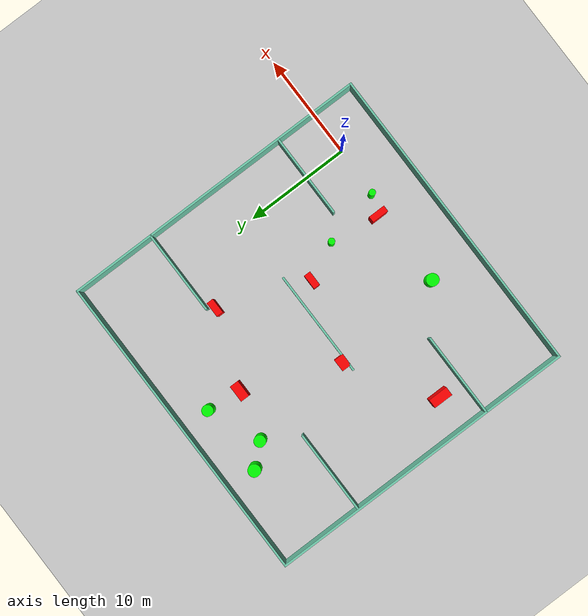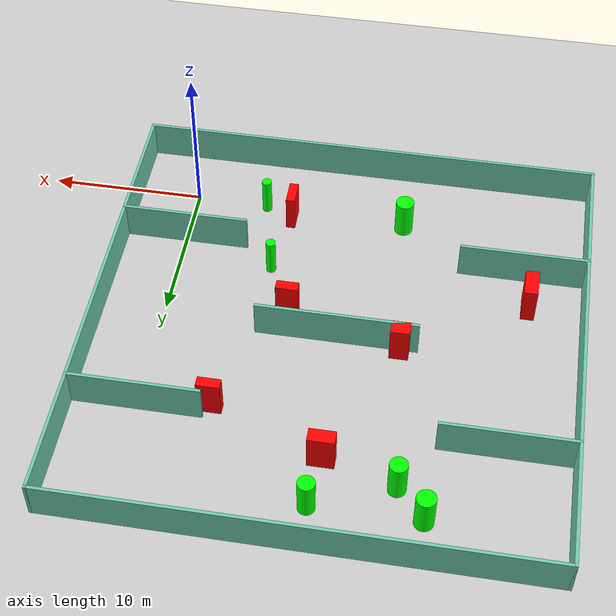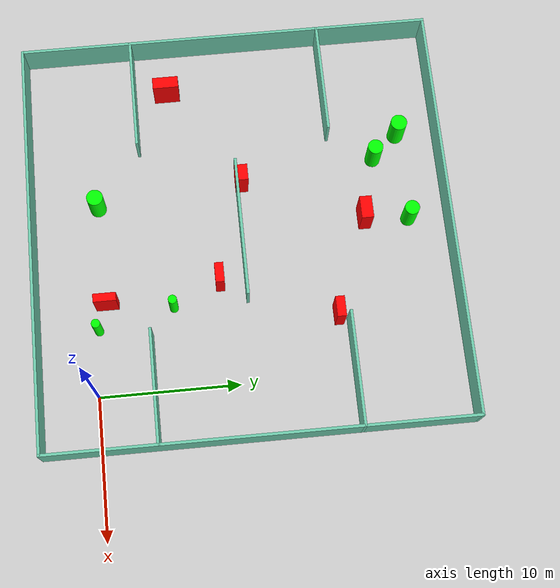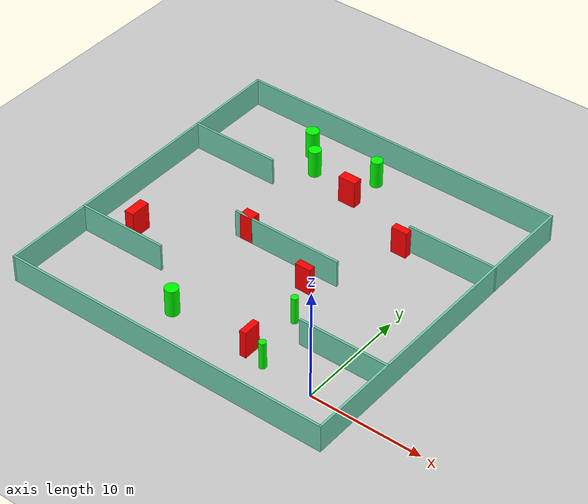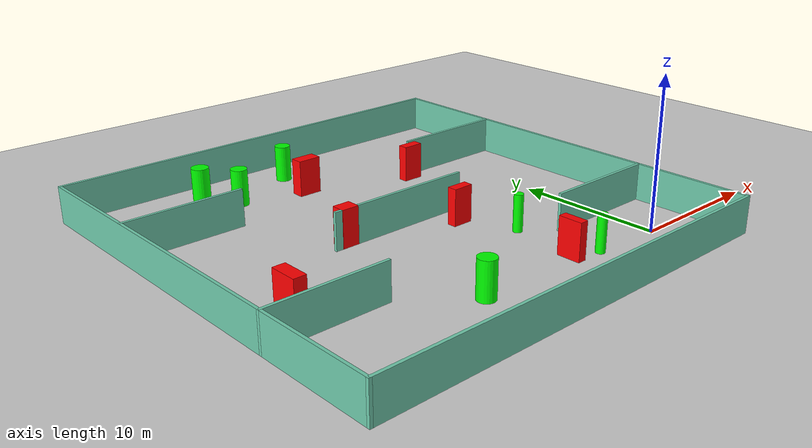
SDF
<sdf version="1.7">
 <world name="default">
  <light name="sun" type="directional">
   <pose>0 0 10 0 -0 0</pose>
   <diffuse>0.8 0.8 0.8 1</diffuse>
   <specular>0.2 0.2 0.2 1</specular>
   <attenuation>
    <range>1000</range>
    <constant>0.9</constant>
    <linear>0.01</linear>
    <quadratic>0.001</quadratic>
   </attenuation>
   <direction>-0.5 0.1 -0.9</direction>
   <spot><inner_angle>0</inner_angle><outer_angle>0</outer_angle><falloff>0</falloff></spot>
  </light>
  <model name="ground_plane">
   <static>1</static>
   <link name="link">
    <collision name="collision">
     <geometry><plane><normal>0 0 1</normal><size>100 100</size></plane></geometry>
     <surface>
      <contact><collide_bitmask>65535</collide_bitmask></contact>
      <friction><ode><mu>100</mu><mu2>50</mu2></ode></friction>
     </surface>
    </collision>
    <visual name="visual">
     <cast_shadows>0</cast_shadows>
     <geometry><plane><normal>0 0 1</normal><size>100 100</size></plane></geometry>
     <material>
      <script><uri>file://media/materials/scripts/gazebo.material</uri><name>Gazebo/Grey</name></script>
     </material>
    </visual>
   </link>
  </model>
  <gravity>0 0 -9.8</gravity>
  <magnetic_field>6e-06 2.3e-05 -4.2e-05</magnetic_field>
  <atmosphere type="adiabatic"/>
  <physics type="ode">
   <max_step_size>0.001</max_step_size>
   <real_time_factor>1</real_time_factor>
   <real_time_update_rate>1000</real_time_update_rate>
  </physics>
  <scene><ambient>0.4 0.4 0.4 1</ambient><background>0.7 0.7 0.7 1</background><shadows>1</shadows></scene>
  <spherical_coordinates>
   <surface_model>EARTH_WGS84</surface_model>
   <latitude_deg>0</latitude_deg>
   <longitude_deg>0</longitude_deg>
   <elevation>0</elevation>
   <heading_deg>0</heading_deg>
  </spherical_coordinates>
  <model name="my_base_walls">
   <link name="Wall_10">
    <collision name="Wall_10_Collision">
     <geometry><box><size>8.2 0.2 2.5</size></box></geometry>
     <pose>0 0 1.25 0 -0 0</pose>
    </collision>
    <visual name="Wall_10_Visual">
     <pose>0 0 1.25 0 -0 0</pose>
     <geometry><box><size>8.2 0.2 2.5</size></box></geometry>
     <material>
      <script><uri>file://media/materials/scripts/gazebo.material</uri><name>Gazebo/Grey</name></script>
      <ambient>0.435294 0.796078 0.67451 1</ambient>
     </material>
     <meta><layer>0</layer></meta>
    </visual>
    <pose>-11 -7 0 0 -0 0</pose>
   </link>
   <link name="Wall_12">
    <collision name="Wall_12_Collision">
     <geometry><box><size>8.2 0.2 2.5</size></box></geometry>
     <pose>0 0 1.25 0 -0 0</pose>
    </collision>
    <visual name="Wall_12_Visual">
     <pose>0 0 1.25 0 -0 0</pose>
     <geometry><box><size>8.2 0.2 2.5</size></box></geometry>
     <material>
      <script><uri>file://media/materials/scripts/gazebo.material</uri><name>Gazebo/Grey</name></script>
      <ambient>0.435294 0.796078 0.67451 1</ambient>
     </material>
     <meta><layer>0</layer></meta>
    </visual>
    <pose>-11 7 0 0 -0 0</pose>
   </link>
   <link name="Wall_14">
    <collision name="Wall_14_Collision">
     <geometry><box><size>8.2 0.2 2.5</size></box></geometry>
     <pose>0 0 1.25 0 -0 0</pose>
    </collision>
    <visual name="Wall_14_Visual">
     <pose>0 0 1.25 0 -0 0</pose>
     <geometry><box><size>8.2 0.2 2.5</size></box></geometry>
     <material>
      <script><uri>file://media/materials/scripts/gazebo.material</uri><name>Gazebo/Grey</name></script>
      <ambient>0.435294 0.796078 0.67451 1</ambient>
     </material>
     <meta><layer>0</layer></meta>
    </visual>
    <pose>11 7 0 0 -0 3.14159</pose>
   </link>
   <link name="Wall_16">
    <collision name="Wall_16_Collision">
     <geometry><box><size>10.2 0.2 2.5</size></box></geometry>
     <pose>0 0 1.25 0 -0 0</pose>
    </collision>
    <visual name="Wall_16_Visual">
     <pose>0 0 1.25 0 -0 0</pose>
     <geometry><box><size>10.2 0.2 2.5</size></box></geometry>
     <material>
      <script><uri>file://media/materials/scripts/gazebo.material</uri><name>Gazebo/Grey</name></script>
      <ambient>0.435294 0.796078 0.67451 1</ambient>
     </material>
     <meta><layer>0</layer></meta>
    </visual>
    <pose>0 0 0 0 -0 3.14159</pose>
   </link>
   <link name="Wall_2">
    <collision name="Wall_2_Collision">
     <geometry><box><size>30.2 0.2 2.5</size></box></geometry>
     <pose>0 0 1.25 0 -0 0</pose>
    </collision>
    <visual name="Wall_2_Visual">
     <pose>0 0 1.25 0 -0 0</pose>
     <geometry><box><size>30.2 0.2 2.5</size></box></geometry>
     <material>
      <script><uri>file://media/materials/scripts/gazebo.material</uri><name>Gazebo/Grey</name></script>
      <ambient>0.435294 0.796078 0.67451 1</ambient>
     </material>
     <meta><layer>0</layer></meta>
    </visual>
    <pose>0 -15 0 0 -0 3.14159</pose>
   </link>
   <link name="Wall_3">
    <collision name="Wall_3_Collision">
     <geometry><box><size>30.2 0.2 2.5</size></box></geometry>
     <pose>0 0 1.25 0 -0 0</pose>
    </collision>
    <visual name="Wall_3_Visual">
     <pose>0 0 1.25 0 -0 0</pose>
     <geometry><box><size>30.2 0.2 2.5</size></box></geometry>
     <material>
      <script><uri>file://media/materials/scripts/gazebo.material</uri><name>Gazebo/Grey</name></script>
      <ambient>0.435294 0.796078 0.67451 1</ambient>
     </material>
     <meta><layer>0</layer></meta>
    </visual>
    <pose>-15 0 0 0 -0 1.5708</pose>
   </link>
   <link name="Wall_4">
    <collision name="Wall_4_Collision">
     <geometry><box><size>30.2 0.2 2.5</size></box></geometry>
     <pose>0 0 1.25 0 -0 0</pose>
    </collision>
    <visual name="Wall_4_Visual">
     <pose>0 0 1.25 0 -0 0</pose>
     <geometry><box><size>30.2 0.2 2.5</size></box></geometry>
     <material>
      <script><uri>file://media/materials/scripts/gazebo.material</uri><name>Gazebo/Grey</name></script>
      <ambient>0.435294 0.796078 0.67451 1</ambient>
     </material>
     <meta><layer>0</layer></meta>
    </visual>
    <pose>0 15 0 0 -0 0</pose>
   </link>
   <link name="Wall_6">
    <collision name="Wall_6_Collision">
     <geometry><box><size>30.2 0.2 2.5</size></box></geometry>
     <pose>0 0 1.25 0 -0 0</pose>
    </collision>
    <visual name="Wall_6_Visual">
     <pose>0 0 1.25 0 -0 0</pose>
     <geometry><box><size>30.2 0.2 2.5</size></box></geometry>
     <material>
      <script><uri>file://media/materials/scripts/gazebo.material</uri><name>Gazebo/Grey</name></script>
      <ambient>0.435294 0.796078 0.67451 1</ambient>
     </material>
     <meta><layer>0</layer></meta>
    </visual>
    <pose>15 0 0 0 -0 1.5708</pose>
   </link>
   <link name="Wall_8">
    <collision name="Wall_8_Collision">
     <geometry><box><size>8.2 0.2 2.5</size></box></geometry>
     <pose>0 0 1.25 0 -0 0</pose>
    </collision>
    <visual name="Wall_8_Visual">
     <pose>0 0 1.25 0 -0 0</pose>
     <geometry><box><size>8.2 0.2 2.5</size></box></geometry>
     <material>
      <script><uri>file://media/materials/scripts/gazebo.material</uri><name>Gazebo/Grey</name></script>
      <ambient>0.435294 0.796078 0.67451 1</ambient>
     </material>
     <meta><layer>0</layer></meta>
    </visual>
    <pose>11 -7 0 0 -0 3.14159</pose>
   </link>
   <static>1</static>
   <pose>-11 11 0 0 -0 0</pose>
  </model>
  <model name="cylinder1">
   <static>1</static>
   <link name="link">
    <inertial>
     <mass>1</mass>
     <inertia><ixx>0.5</ixx><ixy>0</ixy><ixz>0</ixz><iyy>0.5</iyy><iyz>0</iyz><izz>1</izz></inertia>
    </inertial>
    <collision name="collision">
     <geometry><cylinder><radius>0.5537782183750937</radius><length>2.5</length></cylinder></geometry>
    </collision>
    <visual name="visual">
     <geometry><cylinder><radius>0.5537782183750937</radius><length>2.5</length></cylinder></geometry>
     <material>
      <ambient>0 1 0 1</ambient>
      <diffuse>0 1 0 1</diffuse>
      <specular>0.1 0.1 0.1 1</specular>
      <emissive>0 0 0 0</emissive>
     </material>
    </visual>
   </link>
   <pose>-16.053002397952252 21.233594235862146 1.25 0 0 0</pose>
  </model>
  <model name="cylinder2">
   <static>1</static>
   <link name="link">
    <inertial>
     <mass>1</mass>
     <inertia><ixx>0.5</ixx><ixy>0</ixy><ixz>0</ixz><iyy>0.5</iyy><iyz>0</iyz><izz>1</izz></inertia>
    </inertial>
    <collision name="collision">
     <geometry><cylinder><radius>0.590205214627458</radius><length>2.5</length></cylinder></geometry>
    </collision>
    <visual name="visual">
     <geometry><cylinder><radius>0.590205214627458</radius><length>2.5</length></cylinder></geometry>
     <material>
      <ambient>0 1 0 1</ambient>
      <diffuse>0 1 0 1</diffuse>
      <specular>0.1 0.1 0.1 1</specular>
      <emissive>0 0 0 0</emissive>
     </material>
    </visual>
   </link>
   <pose>-13.99451598826225 0.7223873076785399 1.25 0 0 0</pose>
  </model>
  <model name="cylinder3">
   <static>1</static>
   <link name="link">
    <inertial>
     <mass>1</mass>
     <inertia><ixx>0.5</ixx><ixy>0</ixy><ixz>0</ixz><iyy>0.5</iyy><iyz>0</iyz><izz>1</izz></inertia>
    </inertial>
    <collision name="collision">
     <geometry><cylinder><radius>0.5286949915150214</radius><length>2.5</length></cylinder></geometry>
    </collision>
    <visual name="visual">
     <geometry><cylinder><radius>0.5286949915150214</radius><length>2.5</length></cylinder></geometry>
     <material>
      <ambient>0 1 0 1</ambient>
      <diffuse>0 1 0 1</diffuse>
      <specular>0.1 0.1 0.1 1</specular>
      <emissive>0 0 0 0</emissive>
     </material>
    </visual>
   </link>
   <pose>-11.1758381243263 23.251627981351763 1.25 0 0 0</pose>
  </model>
  <model name="cylinder4">
   <static>1</static>
   <link name="link">
    <inertial>
     <mass>1</mass>
     <inertia><ixx>0.5</ixx><ixy>0</ixy><ixz>0</ixz><iyy>0.5</iyy><iyz>0</iyz><izz>1</izz></inertia>
    </inertial>
    <collision name="collision">
     <geometry><cylinder><radius>0.5916377829027153</radius><length>2.5</length></cylinder></geometry>
    </collision>
    <visual name="visual">
     <geometry><cylinder><radius>0.5916377829027153</radius><length>2.5</length></cylinder></geometry>
     <material>
      <ambient>0 1 0 1</ambient>
      <diffuse>0 1 0 1</diffuse>
      <specular>0.1 0.1 0.1 1</specular>
      <emissive>0 0 0 0</emissive>
     </material>
    </visual>
   </link>
   <pose>-17.7991284885468 23.16713936007874 1.25 0 0 0</pose>
  </model>
  <model name="cylinder5">
   <static>1</static>
   <link name="link">
    <inertial>
     <mass>1</mass>
     <inertia><ixx>0.5</ixx><ixy>0</ixy><ixz>0</ixz><iyy>0.5</iyy><iyz>0</iyz><izz>1</izz></inertia>
    </inertial>
    <collision name="collision">
     <geometry><cylinder><radius>0.3140329918122599</radius><length>2.5</length></cylinder></geometry>
    </collision>
    <visual name="visual">
     <geometry><cylinder><radius>0.3140329918122599</radius><length>2.5</length></cylinder></geometry>
     <material>
      <ambient>0 1 0 1</ambient>
      <diffuse>0 1 0 1</diffuse>
      <specular>0.1 0.1 0.1 1</specular>
      <emissive>0 0 0 0</emissive>
     </material>
    </visual>
   </link>
   <pose>-5.968654358546964 5.701399901888774 1.25 0 0 0</pose>
  </model>
  <model name="cylinder6">
   <static>1</static>
   <link name="link">
    <inertial>
     <mass>1</mass>
     <inertia><ixx>0.5</ixx><ixy>0</ixy><ixz>0</ixz><iyy>0.5</iyy><iyz>0</iyz><izz>1</izz></inertia>
    </inertial>
    <collision name="collision">
     <geometry><cylinder><radius>0.31481515556834855</radius><length>2.5</length></cylinder></geometry>
    </collision>
    <visual name="visual">
     <geometry><cylinder><radius>0.31481515556834855</radius><length>2.5</length></cylinder></geometry>
     <material>
      <ambient>0 1 0 1</ambient>
      <diffuse>0 1 0 1</diffuse>
      <specular>0.1 0.1 0.1 1</specular>
      <emissive>0 0 0 0</emissive>
     </material>
    </visual>
   </link>
   <pose>-4.725069921936392 0.286192155623163 1.25 0 0 0</pose>
  </model>
  <model name="box1">
   <static>1</static>
   <link name="link">
    <inertial>
     <mass>1</mass>
     <inertia><ixx>0.083</ixx><ixy>0</ixy><ixz>0</ixz><iyy>0.083</iyy><iyz>0</iyz><izz>0.083</izz></inertia>
    </inertial>
    <collision name="collision">
     <geometry><box><size>1.4228102932337925 0.6393260907432163 2.5</size></box></geometry>
    </collision>
    <visual name="visual">
     <geometry><box><size>1.4228102932337925 0.6393260907432163 2.5</size></box></geometry>
     <material>
      <ambient>1 0 0 1</ambient>
      <diffuse>1 0 0 1</diffuse>
      <specular>0.1 0.1 0.1 1</specular>
      <emissive>0 0 0 0</emissive>
     </material>
    </visual>
    <sensor name="my_contact" type="contact">
     <contact><collision>box_collision</collision><topic>__default_topic__</topic></contact>
    </sensor>
   </link>
   <pose>-7.642189609015549 9.124646878164668 1.25 0 0 0</pose>
  </model>
  <model name="box2">
   <static>1</static>
   <link name="link">
    <inertial>
     <mass>1</mass>
     <inertia><ixx>0.083</ixx><ixy>0</ixy><ixz>0</ixz><iyy>0.083</iyy><iyz>0</iyz><izz>0.083</izz></inertia>
    </inertial>
    <collision name="collision">
     <geometry><box><size>1.4494259847927253 0.6527287275485648 2.5</size></box></geometry>
    </collision>
    <visual name="visual">
     <geometry><box><size>1.4494259847927253 0.6527287275485648 2.5</size></box></geometry>
     <material>
      <ambient>1 0 0 1</ambient>
      <diffuse>1 0 0 1</diffuse>
      <specular>0.1 0.1 0.1 1</specular>
      <emissive>0 0 0 0</emissive>
     </material>
    </visual>
    <sensor name="my_contact" type="contact">
     <contact><collision>box_collision</collision><topic>__default_topic__</topic></contact>
    </sensor>
   </link>
   <pose>-4.414587577374618 17.329087222188917 1.25 0 0 0</pose>
  </model>
  <model name="box3">
   <static>1</static>
   <link name="link">
    <inertial>
     <mass>1</mass>
     <inertia><ixx>0.083</ixx><ixy>0</ixy><ixz>0</ixz><iyy>0.083</iyy><iyz>0</iyz><izz>0.083</izz></inertia>
    </inertial>
    <collision name="collision">
     <geometry><box><size>1.6220460662850698 0.8638777489156384 2.5</size></box></geometry>
    </collision>
    <visual name="visual">
     <geometry><box><size>1.6220460662850698 0.8638777489156384 2.5</size></box></geometry>
     <material>
      <ambient>1 0 0 1</ambient>
      <diffuse>1 0 0 1</diffuse>
      <specular>0.1 0.1 0.1 1</specular>
      <emissive>0 0 0 0</emissive>
     </material>
    </visual>
    <sensor name="my_contact" type="contact">
     <contact><collision>box_collision</collision><topic>__default_topic__</topic></contact>
    </sensor>
   </link>
   <pose>-11.522534312766298 20.010619502079344 1.25 0 0 0</pose>
  </model>
  <model name="box4">
   <static>1</static>
   <link name="link">
    <inertial>
     <mass>1</mass>
     <inertia><ixx>0.083</ixx><ixy>0</ixy><ixz>0</ixz><iyy>0.083</iyy><iyz>0</iyz><izz>0.083</izz></inertia>
    </inertial>
    <collision name="collision">
     <geometry><box><size>0.852775751529706 1.8733180933755893 2.5</size></box></geometry>
    </collision>
    <visual name="visual">
     <geometry><box><size>0.852775751529706 1.8733180933755893 2.5</size></box></geometry>
     <material>
      <ambient>1 0 0 1</ambient>
      <diffuse>1 0 0 1</diffuse>
      <specular>0.1 0.1 0.1 1</specular>
      <emissive>0 0 0 0</emissive>
     </material>
    </visual>
    <sensor name="my_contact" type="contact">
     <contact><collision>box_collision</collision><topic>__default_topic__</topic></contact>
    </sensor>
   </link>
   <pose>-22.578214633172372 6.40408144532984 1.25 0 0 0</pose>
  </model>
  <model name="box5">
   <static>1</static>
   <link name="link">
    <inertial>
     <mass>1</mass>
     <inertia><ixx>0.083</ixx><ixy>0</ixy><ixz>0</ixz><iyy>0.083</iyy><iyz>0</iyz><izz>0.083</izz></inertia>
    </inertial>
    <collision name="collision">
     <geometry><box><size>1.1918634609839573 0.9235493792194405 2.5</size></box></geometry>
    </collision>
    <visual name="visual">
     <geometry><box><size>1.1918634609839573 0.9235493792194405 2.5</size></box></geometry>
     <material>
      <ambient>1 0 0 1</ambient>
      <diffuse>1 0 0 1</diffuse>
      <specular>0.1 0.1 0.1 1</specular>
      <emissive>0 0 0 0</emissive>
     </material>
    </visual>
    <sensor name="my_contact" type="contact">
     <contact><collision>box_collision</collision><topic>__default_topic__</topic></contact>
    </sensor>
   </link>
   <pose>-14.985523644590343 11.349262584430607 1.25 0 0 0</pose>
  </model>
  <model name="box6">
   <static>1</static>
   <link name="link">
    <inertial>
     <mass>1</mass>
     <inertia><ixx>0.083</ixx><ixy>0</ixy><ixz>0</ixz><iyy>0.083</iyy><iyz>0</iyz><izz>0.083</izz></inertia>
    </inertial>
    <collision name="collision">
     <geometry><box><size>0.5911983263755335 1.6242391196798212 2.5</size></box></geometry>
    </collision>
    <visual name="visual">
     <geometry><box><size>0.5911983263755335 1.6242391196798212 2.5</size></box></geometry>
     <material>
      <ambient>1 0 0 1</ambient>
      <diffuse>1 0 0 1</diffuse>
      <specular>0.1 0.1 0.1 1</specular>
      <emissive>0 0 0 0</emissive>
     </material>
    </visual>
    <sensor name="my_contact" type="contact">
     <contact><collision>box_collision</collision><topic>__default_topic__</topic></contact>
    </sensor>
   </link>
   <pose>-6.560121867156525 0.9907276441925115 1.25 0 0 0</pose>
  </model>
 </world>
</sdf>
